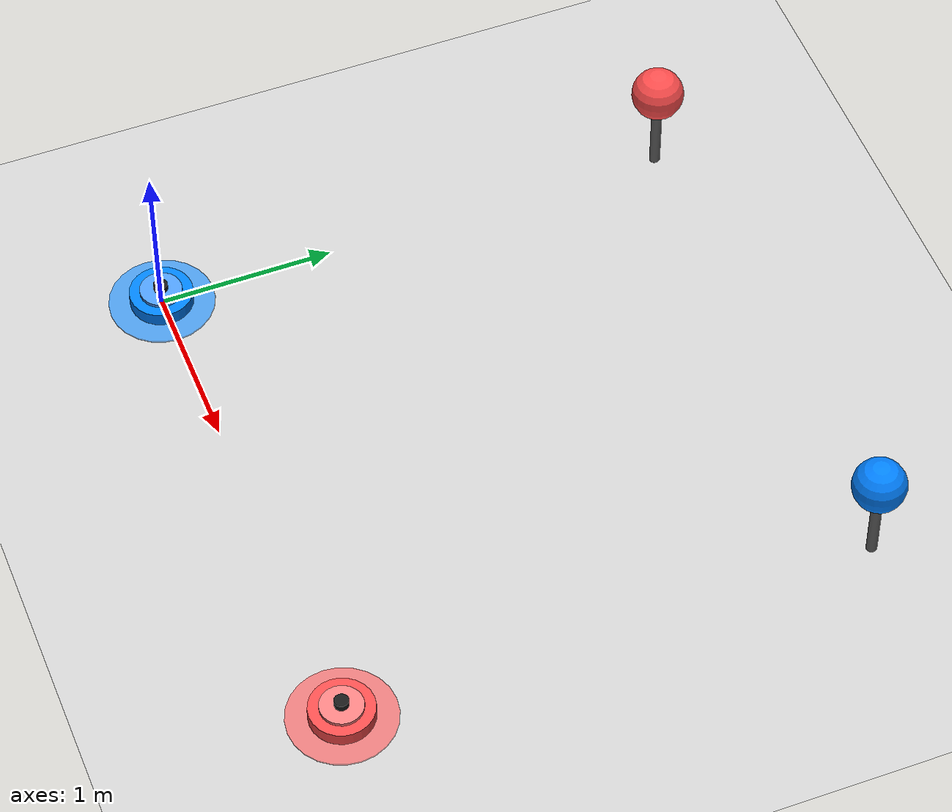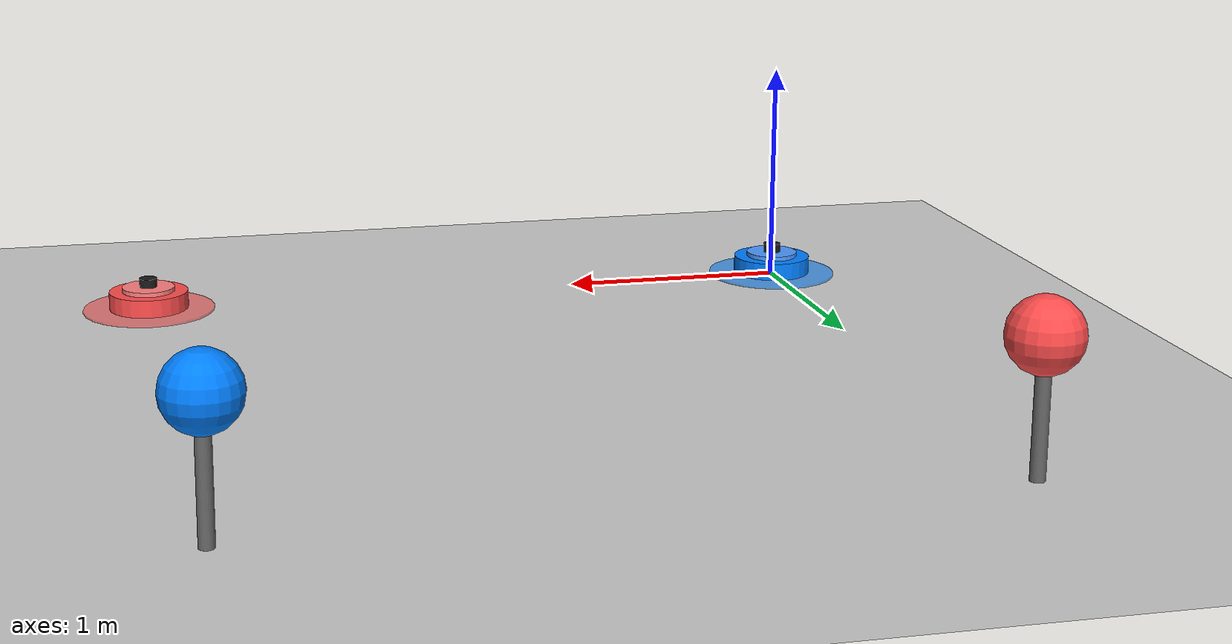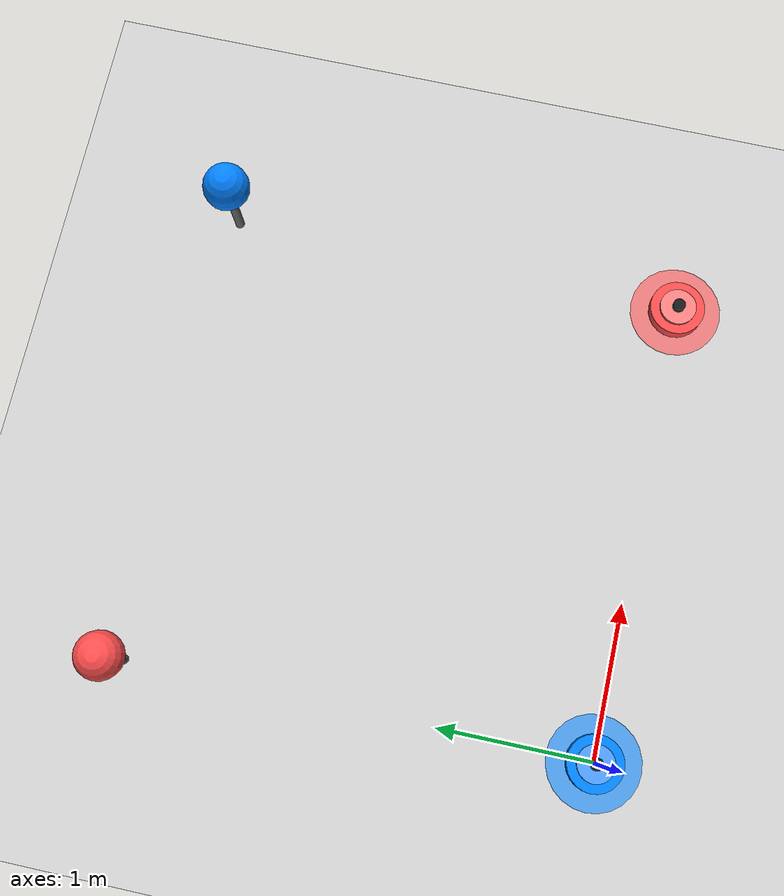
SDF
<?xml version="1.0" ?>
<sdf version="1.9">
  <world name="cbf_demo">
    <physics name="1ms" type="ignored">
      <max_step_size>0.001</max_step_size>
      <real_time_factor>1.0</real_time_factor>
    </physics>
    <plugin filename="gz-sim-physics-system" name="gz::sim::systems::Physics"/>
    <plugin filename="gz-sim-user-commands-system" name="gz::sim::systems::UserCommands"/>
    <plugin filename="gz-sim-scene-broadcaster-system" name="gz::sim::systems::SceneBroadcaster"/>
    <plugin filename="gz-sim-sensors-system" name="gz::sim::systems::Sensors">
      <render_engine>ogre2</render_engine>
    </plugin>

    <light type="directional" name="sun">
      <pose>0 0 10 0 0 0</pose>
      <diffuse>1 1 1 1</diffuse>
      <specular>0.5 0.5 0.5 1</specular>
    </light>

    <!-- Ground Plane -->
    <model name="ground_plane">
      <static>true</static>
      <link name="link">
        <collision name="collision">
          <geometry><plane><normal>0 0 1</normal><size>100 100</size></plane></geometry>
        </collision>
        <visual name="visual">
          <geometry><plane><normal>0 0 1</normal><size>10 10</size></plane></geometry>
          <material>
            <ambient>0.8 0.8 0.8 1</ambient>
            <diffuse>0.8 0.8 0.8 1</diffuse>
          </material>
        </visual>
      </link>
    </model>

    <!-- Start Markers -->
    <model name="start_blue">
      <static>true</static>
      <pose>0 0 0.005 0 0 0</pose>
      <link name="marker">
        <visual name="v">
          <geometry><cylinder><radius>0.3</radius><length>0.01</length></cylinder></geometry>
          <material><ambient>0 0.3 1 0.6</ambient><diffuse>0 0.5 1 0.6</diffuse></material>
        </visual>
      </link>
    </model>

    <model name="start_red">
      <static>true</static>
      <pose>3 0 0.005 0 0 0</pose>
      <link name="marker">
        <visual name="v">
          <geometry><cylinder><radius>0.3</radius><length>0.01</length></cylinder></geometry>
          <material><ambient>1 0.2 0.2 0.6</ambient><diffuse>1 0.3 0.3 0.6</diffuse></material>
        </visual>
      </link>
    </model>

    <!-- Goal Markers -->
    <model name="goal_blue">
      <static>true</static>
      <pose>3 3 0 0 0 0</pose>
      <link name="marker">
        <visual name="pole">
          <pose>0 0 0.25 0 0 0</pose>
          <geometry><cylinder><radius>0.03</radius><length>0.5</length></cylinder></geometry>
          <material><ambient>0.4 0.4 0.4 1</ambient></material>
        </visual>
        <visual name="flag">
          <pose>0 0 0.55 0 0 0</pose>
          <geometry><sphere><radius>0.15</radius></sphere></geometry>
          <material><ambient>0 0.3 1 1</ambient><diffuse>0 0.5 1 1</diffuse></material>
        </visual>
      </link>
    </model>

    <model name="goal_red">
      <static>true</static>
      <pose>0 3 0 0 0 0</pose>
      <link name="marker">
        <visual name="pole">
          <pose>0 0 0.25 0 0 0</pose>
          <geometry><cylinder><radius>0.03</radius><length>0.5</length></cylinder></geometry>
          <material><ambient>0.4 0.4 0.4 1</ambient></material>
        </visual>
        <visual name="flag">
          <pose>0 0 0.55 0 0 0</pose>
          <geometry><sphere><radius>0.15</radius></sphere></geometry>
          <material><ambient>1 0.2 0.2 1</ambient><diffuse>1 0.3 0.3 1</diffuse></material>
        </visual>
      </link>
    </model>

    <!-- BLUE ROBOT -->
    <model name="robot0">
      <pose>0 0 0.05 0 0 0</pose>
      <self_collide>false</self_collide>

      <link name="base_link">
        <inertial>
          <mass>1.0</mass>
          <inertia>
            <ixx>0.01</ixx><iyy>0.01</iyy><izz>0.01</izz>
          </inertia>
        </inertial>

        <visual name="body">
          <geometry><cylinder><radius>0.18</radius><length>0.08</length></cylinder></geometry>
          <material><ambient>0 0.3 1 1</ambient><diffuse>0 0.5 1 1</diffuse></material>
        </visual>

        <visual name="top">
          <pose>0 0 0.05 0 0 0</pose>
          <geometry><cylinder><radius>0.12</radius><length>0.02</length></cylinder></geometry>
          <material><ambient>0.2 0.5 1 1</ambient><diffuse>0.3 0.6 1 1</diffuse></material>
        </visual>

        <visual name="lidar_housing">
          <pose>0 0 0.08 0 0 0</pose>
          <geometry><cylinder><radius>0.04</radius><length>0.04</length></cylinder></geometry>
          <material><ambient>0.1 0.1 0.1 1</ambient></material>
        </visual>

        <collision name="collision">
          <geometry><cylinder><radius>0.18</radius><length>0.08</length></cylinder></geometry>
        </collision>

        <sensor name="lidar" type="gpu_lidar">
          <pose>0 0 0.1 0 0 0</pose>
          <topic>robot0/scan</topic>
          <update_rate>10</update_rate>
          <lidar>
            <scan>
              <horizontal>
                <samples>360</samples>
                <resolution>1</resolution>
                <min_angle>-3.14159</min_angle>
                <max_angle>3.14159</max_angle>
              </horizontal>
            </scan>
            <range>
              <min>0.1</min>
              <max>5.0</max>
              <resolution>0.01</resolution>
            </range>
          </lidar>
          <visualize>true</visualize>
        </sensor>
      </link>

      <plugin filename="gz-sim-odometry-publisher-system" name="gz::sim::systems::OdometryPublisher">
        <odom_frame>odom</odom_frame>
        <robot_base_frame>robot0/base_link</robot_base_frame>
        <odom_publish_frequency>50</odom_publish_frequency>
        <odom_topic>robot0/odom</odom_topic>
      </plugin>

      <plugin filename="gz-sim-velocity-control-system" name="gz::sim::systems::VelocityControl">
        <topic>robot0/cmd_vel</topic>
      </plugin>
    </model>

    <!-- RED ROBOT -->
    <model name="robot1">
      <pose>3 0 0.05 0 0 0</pose>
      <self_collide>false</self_collide>

      <link name="base_link">
        <inertial>
          <mass>1.0</mass>
          <inertia>
            <ixx>0.01</ixx><iyy>0.01</iyy><izz>0.01</izz>
          </inertia>
        </inertial>

        <visual name="body">
          <geometry><cylinder><radius>0.18</radius><length>0.08</length></cylinder></geometry>
          <material><ambient>1 0.2 0.2 1</ambient><diffuse>1 0.3 0.3 1</diffuse></material>
        </visual>

        <visual name="top">
          <pose>0 0 0.05 0 0 0</pose>
          <geometry><cylinder><radius>0.12</radius><length>0.02</length></cylinder></geometry>
          <material><ambient>1 0.4 0.4 1</ambient><diffuse>1 0.5 0.5 1</diffuse></material>
        </visual>

        <visual name="lidar_housing">
          <pose>0 0 0.08 0 0 0</pose>
          <geometry><cylinder><radius>0.04</radius><length>0.04</length></cylinder></geometry>
          <material><ambient>0.1 0.1 0.1 1</ambient></material>
        </visual>

        <collision name="collision">
          <geometry><cylinder><radius>0.18</radius><length>0.08</length></cylinder></geometry>
        </collision>

        <sensor name="lidar" type="gpu_lidar">
          <pose>0 0 0.1 0 0 0</pose>
          <topic>robot1/scan</topic>
          <update_rate>10</update_rate>
          <lidar>
            <scan>
              <horizontal>
                <samples>360</samples>
                <resolution>1</resolution>
                <min_angle>-3.14159</min_angle>
                <max_angle>3.14159</max_angle>
              </horizontal>
            </scan>
            <range>
              <min>0.1</min>
              <max>5.0</max>
              <resolution>0.01</resolution>
            </range>
          </lidar>
          <visualize>true</visualize>
        </sensor>
      </link>

      <plugin filename="gz-sim-odometry-publisher-system" name="gz::sim::systems::OdometryPublisher">
        <odom_frame>odom</odom_frame>
        <robot_base_frame>robot1/base_link</robot_base_frame>
        <odom_publish_frequency>50</odom_publish_frequency>
        <odom_topic>robot1/odom</odom_topic>
      </plugin>

      <plugin filename="gz-sim-velocity-control-system" name="gz::sim::systems::VelocityControl">
        <topic>robot1/cmd_vel</topic>
      </plugin>
    </model>

  </world>
</sdf>
